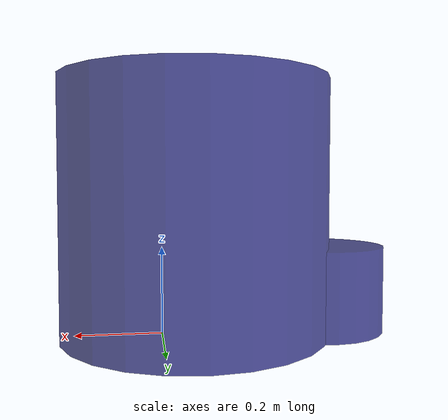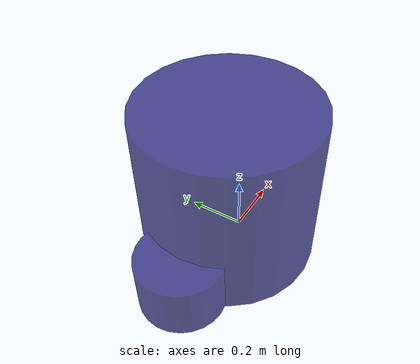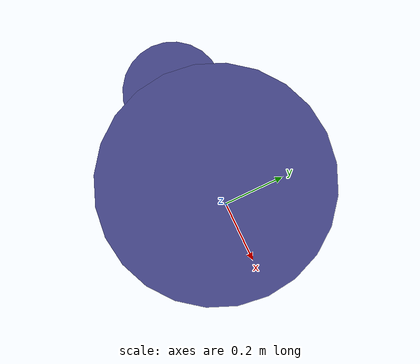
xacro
<robot name="scitos_haw_only" xmlns:xacro="http://ros.org/wiki/xacro">

<include filename="$(find metralabs_ros)/models/xacro/scitos_haw_properties.xacro" />

<link name="base_link"><!--Odometry origin, former called ScitosBase -->
  <visual>
    <origin xyz="-0.075 0 ${scitos_height/2}" rpy="0 0 0" />
    <geometry>
      <cylinder radius="${scitos_width/2}" length="${scitos_height}" />
    </geometry>
    <material name="scitosblue"/>
  </visual>
  <collision>
    <origin xyz="-0.075 0 ${scitos_height/2 + 0.1/2}" rpy="0 0 0" />
    <geometry>
      <cylinder radius="${scitos_width*1.2/2}" length="${scitos_height+0.1}" />
    </geometry>
  </collision>
</link>

<link name="tail">
  <visual>
    <geometry>
      <cylinder radius="0.15" length="0.20" />
    </geometry>
    <material name="scitosblue"/>
  </visual>
  <collision>
    <geometry>
      <cylinder radius="0.25" length="0.30" />
    </geometry>
  </collision>
</link>
<xacro:connect_xyz parent="base_link" child="tail" xyz="${-0.075-0.30} 0 0.10"/>

<!-- Laserscanner, no effect beside nice to see -->

</robot>

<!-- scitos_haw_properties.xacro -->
<robot xmlns:xacro="http://ros.org/wiki/xacro">

<!-- Properties -->

<!--mathematical-->
<xacro:property name="tau" value="6.283185307179586" /><!-- circle constant -->
<xacro:property name="pi" value="3.1415926535897931" /><!-- for legacy: pi = tau/2 -->

<!--physical-->
<xacro:property name="scitos_width" value="0.617" />
<xacro:property name="scitos_height" value="0.583" />
<xacro:property name="gripper_space" value="0.068" /><!--0-68 mm-->
<xacro:property name="schunk_base_offset_front" value="0.040" /><!--arm mounted in front position-->
<xacro:property name="schunk_base_offset_center" value="-0.075" /><!--arm mounted in center position-->
<xacro:property name="schunk_base_offset_rear" value="-0.252" /><!--arm mounted in rear position-->

<!--restraint-->
<xacro:property name="max_vel" value="0.43" /> <!--rounded down maximum velocity of slowest joint -->

<!-- Materials -->

<material name="black">
    <color rgba="0 0 0 1"/>
</material>

<material name="gray">
    <color rgba="0.15 0.15 0.15 1"/>
</material>

<material name="golden">
    <color rgba="0.62 0.57 0.06 1"/>
</material>

<material name="scitosblue">
    <color rgba=".0 .0 .4 0.7" />
</material>

<material name="aluminium">
    <color rgba=".75 .75 .75 1" />
</material>

<material name="yellow">
    <color rgba="1 0.94 0.14 1"/>
</material>

<!-- Joint macros -->

<xacro:macro name="connect" params="parent child">
    <xacro:connect_xyz parent="${parent}" child="${child}" xyz="0 0 0"/>
</xacro:macro>

<xacro:macro name="connect_xyz" params="parent child xyz">
    <xacro:connect_xyz_rpy parent="${parent}" child="${child}" xyz="${xyz}" rpy="0 0 0"/>
</xacro:macro>

<xacro:macro name="connect_xyz_rpy" params="parent child xyz rpy">
    <joint name="${parent}_${child}" type="fixed">
        <origin xyz="${xyz}" rpy="${rpy}" />
        <parent link="${parent}"/>
        <child link="${child}"/>
    </joint>
</xacro:macro>

</robot>
